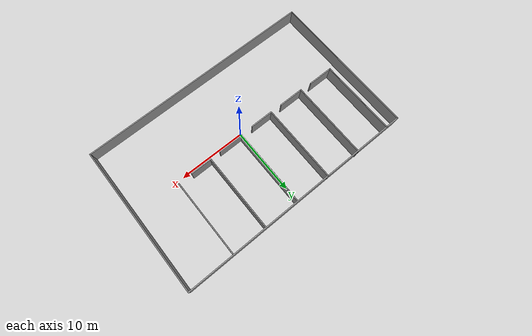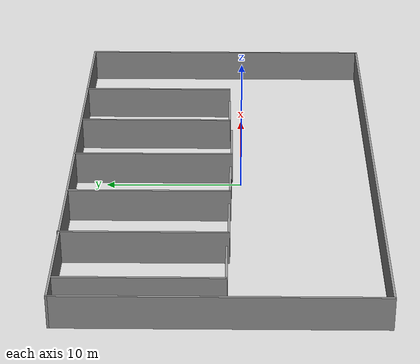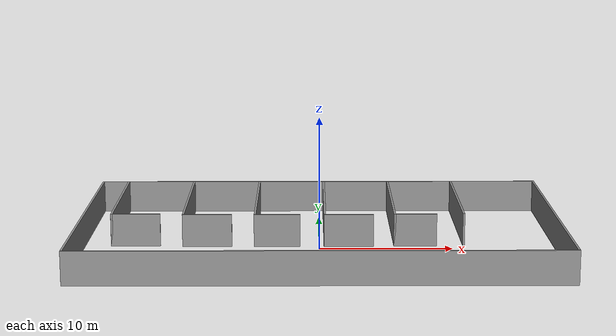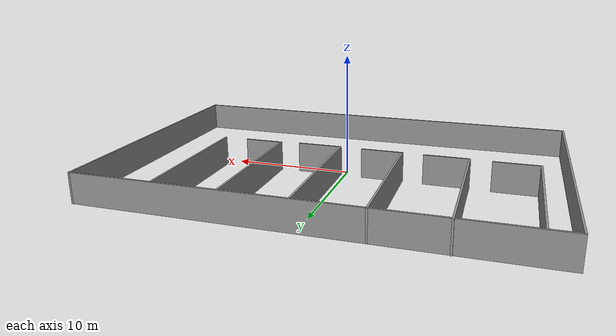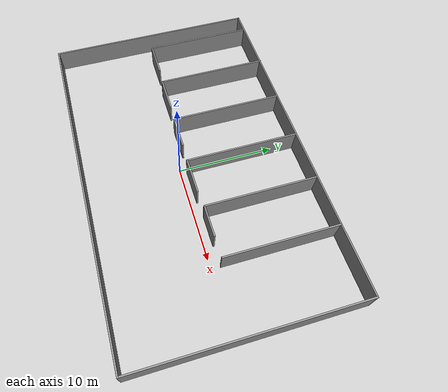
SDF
<?xml version='1.0'?>
<sdf version='1.6'>
  <model name='501~505'>
    <pose frame=''>-0.008247 1.36317 0 0 -0 0</pose>
    <link name='Wall_10'>
      <collision name='Wall_10_Collision'>
        <geometry>
          <box>
            <size>11.5 0.15 2.5</size>
          </box>
        </geometry>
        <pose frame=''>0 0 1.25 0 -0 0</pose>
      </collision>
      <visual name='Wall_10_Visual'>
        <pose frame=''>0 0 1.25 0 -0 0</pose>
        <geometry>
          <box>
            <size>11.5 0.15 2.5</size>
          </box>
        </geometry>
        <material>
          <script>
            <uri>file://media/materials/scripts/gazebo.material</uri>
            <name>Gazebo/Grey</name>
          </script>
          <ambient>1 1 1 1</ambient>
        </material>
        <meta>
          <layer>0</layer>
        </meta>
      </visual>
      <pose frame=''>-15.7081 5.28271 0 0 -0 -1.5708</pose>
    </link>
    <link name='Wall_11'>
      <collision name='Wall_11_Collision'>
        <geometry>
          <box>
            <size>3.75 0.15 2.5</size>
          </box>
        </geometry>
        <pose frame=''>0 0 1.25 0 -0 0</pose>
      </collision>
      <visual name='Wall_11_Visual'>
        <pose frame=''>0 0 1.25 0 -0 0</pose>
        <geometry>
          <box>
            <size>3.75 0.15 2.5</size>
          </box>
        </geometry>
        <material>
          <script>
            <uri>file://media/materials/scripts/gazebo.material</uri>
            <name>Gazebo/Grey</name>
          </script>
          <ambient>1 1 1 1</ambient>
        </material>
        <meta>
          <layer>0</layer>
        </meta>
      </visual>
      <pose frame=''>-13.9081 -0.392292 0 0 -0 0</pose>
    </link>
    <link name='Wall_13'>
      <collision name='Wall_13_Collision'>
        <geometry>
          <box>
            <size>11.75 0.15 2.5</size>
          </box>
        </geometry>
        <pose frame=''>0 0 1.25 0 -0 0</pose>
      </collision>
      <visual name='Wall_13_Visual'>
        <pose frame=''>0 0 1.25 0 -0 0</pose>
        <geometry>
          <box>
            <size>11.75 0.15 2.5</size>
          </box>
        </geometry>
        <material>
          <script>
            <uri>file://media/materials/scripts/gazebo.material</uri>
            <name>Gazebo/Grey</name>
          </script>
          <ambient>1 1 1 1</ambient>
        </material>
        <meta>
          <layer>0</layer>
        </meta>
      </visual>
      <pose frame=''>-10.2936 5.28076 0 0 -0 -1.5708</pose>
    </link>
    <link name='Wall_14'>
      <collision name='Wall_14_Collision'>
        <geometry>
          <box>
            <size>3.75 0.15 2.5</size>
          </box>
        </geometry>
        <pose frame=''>0 0 1.25 0 -0 0</pose>
      </collision>
      <visual name='Wall_14_Visual'>
        <pose frame=''>0 0 1.25 0 -0 0</pose>
        <geometry>
          <box>
            <size>3.75 0.15 2.5</size>
          </box>
        </geometry>
        <material>
          <script>
            <uri>file://media/materials/scripts/gazebo.material</uri>
            <name>Gazebo/Grey</name>
          </script>
          <ambient>1 1 1 1</ambient>
        </material>
        <meta>
          <layer>0</layer>
        </meta>
      </visual>
      <pose frame=''>-8.4936 -0.519236 0 0 -0 0</pose>
    </link>
    <link name='Wall_16'>
      <collision name='Wall_16_Collision'>
        <geometry>
          <box>
            <size>11.75 0.15 2.5</size>
          </box>
        </geometry>
        <pose frame=''>0 0 1.25 0 -0 0</pose>
      </collision>
      <visual name='Wall_16_Visual'>
        <pose frame=''>0 0 1.25 0 -0 0</pose>
        <geometry>
          <box>
            <size>11.75 0.15 2.5</size>
          </box>
        </geometry>
        <material>
          <script>
            <uri>file://media/materials/scripts/gazebo.material</uri>
            <name>Gazebo/Grey</name>
          </script>
          <ambient>1 1 1 1</ambient>
        </material>
        <meta>
          <layer>0</layer>
        </meta>
      </visual>
      <pose frame=''>-4.87915 5.21924 0 0 -0 -1.5708</pose>
    </link>
    <link name='Wall_17'>
      <collision name='Wall_17_Collision'>
        <geometry>
          <box>
            <size>3.5 0.15 2.5</size>
          </box>
        </geometry>
        <pose frame=''>0 0 1.25 0 -0 0</pose>
      </collision>
      <visual name='Wall_17_Visual'>
        <pose frame=''>0 0 1.25 0 -0 0</pose>
        <geometry>
          <box>
            <size>3.5 0.15 2.5</size>
          </box>
        </geometry>
        <material>
          <script>
            <uri>file://media/materials/scripts/gazebo.material</uri>
            <name>Gazebo/Grey</name>
          </script>
          <ambient>1 1 1 1</ambient>
        </material>
        <meta>
          <layer>0</layer>
        </meta>
      </visual>
      <pose frame=''>-3.20415 -0.580764 0 0 -0 0</pose>
    </link>
    <link name='Wall_19'>
      <collision name='Wall_19_Collision'>
        <geometry>
          <box>
            <size>11.75 0.15 2.5</size>
          </box>
        </geometry>
        <pose frame=''>0 0 1.25 0 -0 0</pose>
      </collision>
      <visual name='Wall_19_Visual'>
        <pose frame=''>0 0 1.25 0 -0 0</pose>
        <geometry>
          <box>
            <size>11.75 0.15 2.5</size>
          </box>
        </geometry>
        <material>
          <script>
            <uri>file://media/materials/scripts/gazebo.material</uri>
            <name>Gazebo/Grey</name>
          </script>
          <ambient>1 1 1 1</ambient>
        </material>
        <meta>
          <layer>0</layer>
        </meta>
      </visual>
      <pose frame=''>0.412251 5.15771 0 0 -0 -1.5708</pose>
    </link>
    <link name='Wall_20'>
      <collision name='Wall_20_Collision'>
        <geometry>
          <box>
            <size>3.75 0.15 2.5</size>
          </box>
        </geometry>
        <pose frame=''>0 0 1.25 0 -0 0</pose>
      </collision>
      <visual name='Wall_20_Visual'>
        <pose frame=''>0 0 1.25 0 -0 0</pose>
        <geometry>
          <box>
            <size>3.75 0.15 2.5</size>
          </box>
        </geometry>
        <material>
          <script>
            <uri>file://media/materials/scripts/gazebo.material</uri>
            <name>Gazebo/Grey</name>
          </script>
          <ambient>1 1 1 1</ambient>
        </material>
        <meta>
          <layer>0</layer>
        </meta>
      </visual>
      <pose frame=''>2.21225 -0.642292 0 0 -0 0</pose>
    </link>
    <link name='Wall_22'>
      <collision name='Wall_22_Collision'>
        <geometry>
          <box>
            <size>11.5 0.15 2.5</size>
          </box>
        </geometry>
        <pose frame=''>0 0 1.25 0 -0 0</pose>
      </collision>
      <visual name='Wall_22_Visual'>
        <pose frame=''>0 0 1.25 0 -0 0</pose>
        <geometry>
          <box>
            <size>11.5 0.15 2.5</size>
          </box>
        </geometry>
        <material>
          <script>
            <uri>file://media/materials/scripts/gazebo.material</uri>
            <name>Gazebo/Grey</name>
          </script>
          <ambient>1 1 1 1</ambient>
        </material>
        <meta>
          <layer>0</layer>
        </meta>
      </visual>
      <pose frame=''>5.70365 5.22118 0 0 -0 -1.5708</pose>
    </link>
    <link name='Wall_23'>
      <collision name='Wall_23_Collision'>
        <geometry>
          <box>
            <size>3.25 0.15 2.5</size>
          </box>
        </geometry>
        <pose frame=''>0 0 1.25 0 -0 0</pose>
      </collision>
      <visual name='Wall_23_Visual'>
        <pose frame=''>0 0 1.25 0 -0 0</pose>
        <geometry>
          <box>
            <size>3.25 0.15 2.5</size>
          </box>
        </geometry>
        <material>
          <script>
            <uri>file://media/materials/scripts/gazebo.material</uri>
            <name>Gazebo/Grey</name>
          </script>
          <ambient>1 1 1 1</ambient>
        </material>
        <meta>
          <layer>0</layer>
        </meta>
      </visual>
      <pose frame=''>7.25365 -0.453819 0 0 -0 0</pose>
    </link>
    <link name='Wall_25'>
      <collision name='Wall_25_Collision'>
        <geometry>
          <box>
            <size>11.5 0.15 2.5</size>
          </box>
        </geometry>
        <pose frame=''>0 0 1.25 0 -0 0</pose>
      </collision>
      <visual name='Wall_25_Visual'>
        <pose frame=''>0 0 1.25 0 -0 0</pose>
        <geometry>
          <box>
            <size>11.5 0.15 2.5</size>
          </box>
        </geometry>
        <material>
          <script>
            <uri>file://media/materials/scripts/gazebo.material</uri>
            <name>Gazebo/Grey</name>
          </script>
          <ambient>1 1 1 1</ambient>
        </material>
        <meta>
          <layer>0</layer>
        </meta>
      </visual>
      <pose frame=''>10.9335 5.28271 0 0 -0 -1.5708</pose>
    </link>
    <link name='Wall_5'>
      <collision name='Wall_5_Collision'>
        <geometry>
          <box>
            <size>22.25 0.15 2.5</size>
          </box>
        </geometry>
        <pose frame=''>0 0 1.25 0 -0 0</pose>
      </collision>
      <visual name='Wall_5_Visual'>
        <pose frame=''>0 0 1.25 0 -0 0</pose>
        <geometry>
          <box>
            <size>22.25 0.15 2.5</size>
          </box>
        </geometry>
        <material>
          <script>
            <uri>file://media/materials/scripts/gazebo.material</uri>
            <name>Gazebo/Grey</name>
          </script>
          <ambient>1 1 1 1</ambient>
        </material>
        <meta>
          <layer>0</layer>
        </meta>
      </visual>
      <pose frame=''>-17.8 -0.030764 0 0 -0 -1.5708</pose>
    </link>
    <link name='Wall_6'>
      <collision name='Wall_6_Collision'>
        <geometry>
          <box>
            <size>35.75 0.15 2.5</size>
          </box>
        </geometry>
        <pose frame=''>0 0 1.25 0 -0 0</pose>
      </collision>
      <visual name='Wall_6_Visual'>
        <pose frame=''>0 0 1.25 0 -0 0</pose>
        <geometry>
          <box>
            <size>35.75 0.15 2.5</size>
          </box>
        </geometry>
        <material>
          <script>
            <uri>file://media/materials/scripts/gazebo.material</uri>
            <name>Gazebo/Grey</name>
          </script>
          <ambient>1 1 1 1</ambient>
        </material>
        <meta>
          <layer>0</layer>
        </meta>
      </visual>
      <pose frame=''>0 -11.0808 0 0 -0 0</pose>
    </link>
    <link name='Wall_7'>
      <collision name='Wall_7_Collision'>
        <geometry>
          <box>
            <size>22.25 0.15 2.5</size>
          </box>
        </geometry>
        <pose frame=''>0 0 1.25 0 -0 0</pose>
      </collision>
      <visual name='Wall_7_Visual'>
        <pose frame=''>0 0 1.25 0 -0 0</pose>
        <geometry>
          <box>
            <size>22.25 0.15 2.5</size>
          </box>
        </geometry>
        <material>
          <script>
            <uri>file://media/materials/scripts/gazebo.material</uri>
            <name>Gazebo/Grey</name>
          </script>
          <ambient>1 1 1 1</ambient>
        </material>
        <meta>
          <layer>0</layer>
        </meta>
      </visual>
      <pose frame=''>17.8 -0.030764 0 0 -0 1.5708</pose>
    </link>
    <link name='Wall_8'>
      <collision name='Wall_8_Collision'>
        <geometry>
          <box>
            <size>35.75 0.15 2.5</size>
          </box>
        </geometry>
        <pose frame=''>0 0 1.25 0 -0 0</pose>
      </collision>
      <visual name='Wall_8_Visual'>
        <pose frame=''>0 0 1.25 0 -0 0</pose>
        <geometry>
          <box>
            <size>35.75 0.15 2.5</size>
          </box>
        </geometry>
        <material>
          <script>
            <uri>file://media/materials/scripts/gazebo.material</uri>
            <name>Gazebo/Grey</name>
          </script>
          <ambient>1 1 1 1</ambient>
        </material>
        <meta>
          <layer>0</layer>
        </meta>
      </visual>
      <pose frame=''>0 11.0192 0 0 -0 3.14159</pose>
    </link>
    <static>1</static>
  </model>
</sdf>
